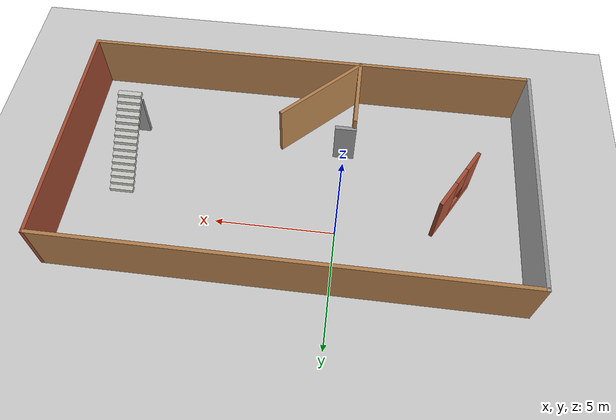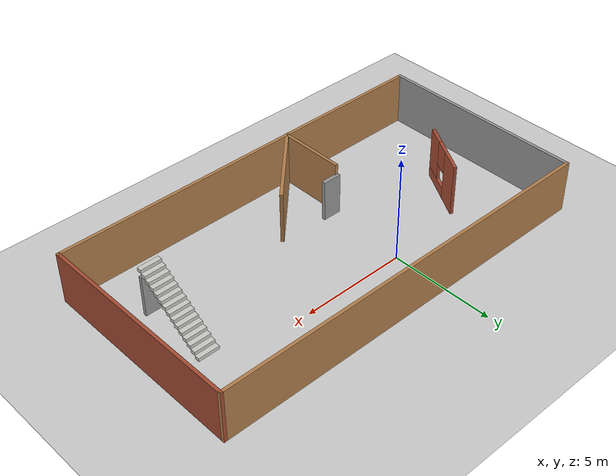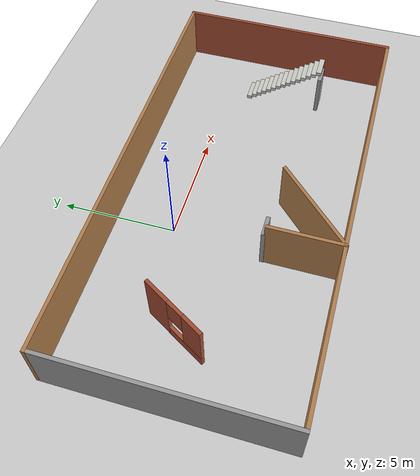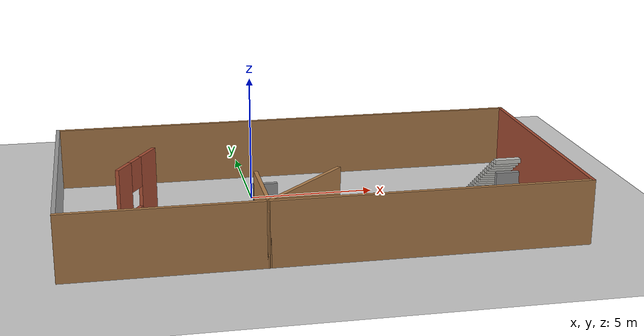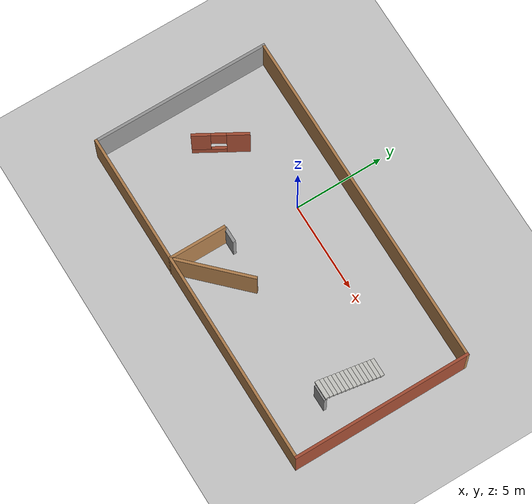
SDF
<sdf version="1.7">
 <world name="default">
  <light name="sun" type="directional">
   <pose>0 0 10 0 -0 0</pose>
   <diffuse>0.8 0.8 0.8 1</diffuse>
   <specular>0.2 0.2 0.2 1</specular>
   <attenuation>
    <range>1000</range>
    <constant>0.9</constant>
    <linear>0.01</linear>
    <quadratic>0.001</quadratic>
   </attenuation>
   <direction>-0.5 0.1 -0.9</direction>
   <spot><inner_angle>0</inner_angle><outer_angle>0</outer_angle><falloff>0</falloff></spot>
  </light>
  <model name="ground_plane">
   <static>1</static>
   <link name="link">
    <collision name="collision">
     <geometry><plane><normal>0 0 1</normal><size>100 100</size></plane></geometry>
     <surface><friction><ode><mu>100</mu><mu2>50</mu2></ode></friction></surface>
    </collision>
    <visual name="visual">
     <cast_shadows>0</cast_shadows>
     <geometry><plane><normal>0 0 1</normal><size>100 100</size></plane></geometry>
     <material>
      <script><uri>file://media/materials/scripts/gazebo.material</uri><name>Gazebo/Grey</name></script>
     </material>
    </visual>
   </link>
  </model>
  <gravity>0 0 -9.8</gravity>
  <magnetic_field>6e-06 2.3e-05 -4.2e-05</magnetic_field>
  <atmosphere type="adiabatic"/>
  <physics type="ode">
   <max_step_size>0.001</max_step_size>
   <real_time_factor>1</real_time_factor>
   <real_time_update_rate>1000</real_time_update_rate>
  </physics>
  <scene><ambient>0.4 0.4 0.4 1</ambient><background>0.7 0.7 0.7 1</background><shadows>1</shadows></scene>
  <audio><device>default</device></audio>
  <spherical_coordinates>
   <surface_model>EARTH_WGS84</surface_model>
   <latitude_deg>0</latitude_deg>
   <longitude_deg>0</longitude_deg>
   <elevation>0</elevation>
   <heading_deg>0</heading_deg>
  </spherical_coordinates>
  <model name="dummy_world">
   <pose>1.93186 -2.27963 0 0 -0 0</pose>
   <link name="Door_0">
    <collision name="Door_0_Collision">
     <geometry><box><size>0.9 0.17 2</size></box></geometry>
     <pose>0 0 1 0 -0 0</pose>
    </collision>
    <visual name="Door_0_Visual">
     <pose>0 0 1 0 -0 0</pose>
     <geometry><box><size>0.9 0.17 2</size></box></geometry>
     <material>
      <script><uri>file://media/materials/scripts/gazebo.material</uri><name>Gazebo/Grey</name></script>
     </material>
    </visual>
    <pose>-1.94359 -1.69996 0 0 -0 0</pose>
   </link>
   <link name="Door_1">
    <collision name="Door_1_Collision">
     <geometry><box><size>0.9 0.17 2</size></box></geometry>
     <pose>0 0 1 0 -0 0</pose>
    </collision>
    <visual name="Door_1_Visual">
     <pose>0 0 1 0 -0 0</pose>
     <geometry><box><size>0.9 0.17 2</size></box></geometry>
     <material>
      <script><uri>file://media/materials/scripts/gazebo.material</uri><name>Gazebo/Grey</name></script>
     </material>
    </visual>
    <pose>7.32525 -2.12823 0 0 -0 0</pose>
   </link>
   <link name="Stairs_0">
    <visual name="Stairs_0_Visual_0">
     <pose>7.32525 1.21816 0.083333 0 -0 0</pose>
     <geometry><box><size>1 0.233333 0.166667</size></box></geometry>
     <material>
      <script><uri>file://media/materials/scripts/gazebo.material</uri><name>Gazebo/CeilingTiled</name></script>
      <ambient>1 0.764706 0.305882 1</ambient>
     </material>
     <meta><layer>0</layer></meta>
    </visual>
    <collision name="Stairs_0_Collision_0">
     <geometry><box><size>1 0.233333 0.166667</size></box></geometry>
     <pose>7.32525 1.21816 0.083333 0 -0 0</pose>
    </collision>
    <visual name="Stairs_0_Visual_1">
     <pose>7.32525 0.984827 0.25 0 -0 0</pose>
     <geometry><box><size>1 0.233333 0.166667</size></box></geometry>
     <material>
      <script><uri>file://media/materials/scripts/gazebo.material</uri><name>Gazebo/CeilingTiled</name></script>
      <ambient>1 0.764706 0.305882 1</ambient>
     </material>
     <meta><layer>0</layer></meta>
    </visual>
    <collision name="Stairs_0_Collision_1">
     <geometry><box><size>1 0.233333 0.166667</size></box></geometry>
     <pose>7.32525 0.984827 0.25 0 -0 0</pose>
    </collision>
    <visual name="Stairs_0_Visual_2">
     <pose>7.32525 0.751494 0.416667 0 -0 0</pose>
     <geometry><box><size>1 0.233333 0.166667</size></box></geometry>
     <material>
      <script><uri>file://media/materials/scripts/gazebo.material</uri><name>Gazebo/CeilingTiled</name></script>
      <ambient>1 0.764706 0.305882 1</ambient>
     </material>
     <meta><layer>0</layer></meta>
    </visual>
    <collision name="Stairs_0_Collision_2">
     <geometry><box><size>1 0.233333 0.166667</size></box></geometry>
     <pose>7.32525 0.751494 0.416667 0 -0 0</pose>
    </collision>
    <visual name="Stairs_0_Visual_3">
     <pose>7.32525 0.518161 0.583333 0 -0 0</pose>
     <geometry><box><size>1 0.233333 0.166667</size></box></geometry>
     <material>
      <script><uri>file://media/materials/scripts/gazebo.material</uri><name>Gazebo/CeilingTiled</name></script>
      <ambient>1 0.764706 0.305882 1</ambient>
     </material>
     <meta><layer>0</layer></meta>
    </visual>
    <collision name="Stairs_0_Collision_3">
     <geometry><box><size>1 0.233333 0.166667</size></box></geometry>
     <pose>7.32525 0.518161 0.583333 0 -0 0</pose>
    </collision>
    <visual name="Stairs_0_Visual_4">
     <pose>7.32525 0.284827 0.75 0 -0 0</pose>
     <geometry><box><size>1 0.233333 0.166667</size></box></geometry>
     <material>
      <script><uri>file://media/materials/scripts/gazebo.material</uri><name>Gazebo/CeilingTiled</name></script>
      <ambient>1 0.764706 0.305882 1</ambient>
     </material>
     <meta><layer>0</layer></meta>
    </visual>
    <collision name="Stairs_0_Collision_4">
     <geometry><box><size>1 0.233333 0.166667</size></box></geometry>
     <pose>7.32525 0.284827 0.75 0 -0 0</pose>
    </collision>
    <visual name="Stairs_0_Visual_5">
     <pose>7.32525 0.051494 0.916667 0 -0 0</pose>
     <geometry><box><size>1 0.233333 0.166667</size></box></geometry>
     <material>
      <script><uri>file://media/materials/scripts/gazebo.material</uri><name>Gazebo/CeilingTiled</name></script>
      <ambient>1 0.764706 0.305882 1</ambient>
     </material>
     <meta><layer>0</layer></meta>
    </visual>
    <collision name="Stairs_0_Collision_5">
     <geometry><box><size>1 0.233333 0.166667</size></box></geometry>
     <pose>7.32525 0.051494 0.916667 0 -0 0</pose>
    </collision>
    <visual name="Stairs_0_Visual_6">
     <pose>7.32525 -0.181839 1.08333 0 -0 0</pose>
     <geometry><box><size>1 0.233333 0.166667</size></box></geometry>
     <material>
      <script><uri>file://media/materials/scripts/gazebo.material</uri><name>Gazebo/CeilingTiled</name></script>
      <ambient>1 0.764706 0.305882 1</ambient>
     </material>
     <meta><layer>0</layer></meta>
    </visual>
    <collision name="Stairs_0_Collision_6">
     <geometry><box><size>1 0.233333 0.166667</size></box></geometry>
     <pose>7.32525 -0.181839 1.08333 0 -0 0</pose>
    </collision>
    <visual name="Stairs_0_Visual_7">
     <pose>7.32525 -0.415173 1.25 0 -0 0</pose>
     <geometry><box><size>1 0.233333 0.166667</size></box></geometry>
     <material>
      <script><uri>file://media/materials/scripts/gazebo.material</uri><name>Gazebo/CeilingTiled</name></script>
      <ambient>1 0.764706 0.305882 1</ambient>
     </material>
     <meta><layer>0</layer></meta>
    </visual>
    <collision name="Stairs_0_Collision_7">
     <geometry><box><size>1 0.233333 0.166667</size></box></geometry>
     <pose>7.32525 -0.415173 1.25 0 -0 0</pose>
    </collision>
    <visual name="Stairs_0_Visual_8">
     <pose>7.32525 -0.648506 1.41667 0 -0 0</pose>
     <geometry><box><size>1 0.233333 0.166667</size></box></geometry>
     <material>
      <script><uri>file://media/materials/scripts/gazebo.material</uri><name>Gazebo/CeilingTiled</name></script>
      <ambient>1 0.764706 0.305882 1</ambient>
     </material>
     <meta><layer>0</layer></meta>
    </visual>
    <collision name="Stairs_0_Collision_8">
     <geometry><box><size>1 0.233333 0.166667</size></box></geometry>
     <pose>7.32525 -0.648506 1.41667 0 -0 0</pose>
    </collision>
    <visual name="Stairs_0_Visual_9">
     <pose>7.32525 -0.88184 1.58333 0 -0 0</pose>
     <geometry><box><size>1 0.233333 0.166667</size></box></geometry>
     <material>
      <script><uri>file://media/materials/scripts/gazebo.material</uri><name>Gazebo/CeilingTiled</name></script>
      <ambient>1 0.764706 0.305882 1</ambient>
     </material>
     <meta><layer>0</layer></meta>
    </visual>
    <collision name="Stairs_0_Collision_9">
     <geometry><box><size>1 0.233333 0.166667</size></box></geometry>
     <pose>7.32525 -0.88184 1.58333 0 -0 0</pose>
    </collision>
    <visual name="Stairs_0_Visual_10">
     <pose>7.32525 -1.11517 1.75 0 -0 0</pose>
     <geometry><box><size>1 0.233333 0.166667</size></box></geometry>
     <material>
      <script><uri>file://media/materials/scripts/gazebo.material</uri><name>Gazebo/CeilingTiled</name></script>
      <ambient>1 0.764706 0.305882 1</ambient>
     </material>
     <meta><layer>0</layer></meta>
    </visual>
    <collision name="Stairs_0_Collision_10">
     <geometry><box><size>1 0.233333 0.166667</size></box></geometry>
     <pose>7.32525 -1.11517 1.75 0 -0 0</pose>
    </collision>
    <visual name="Stairs_0_Visual_11">
     <pose>7.32525 -1.34851 1.91667 0 -0 0</pose>
     <geometry><box><size>1 0.233333 0.166667</size></box></geometry>
     <material>
      <script><uri>file://media/materials/scripts/gazebo.material</uri><name>Gazebo/CeilingTiled</name></script>
      <ambient>1 0.764706 0.305882 1</ambient>
     </material>
     <meta><layer>0</layer></meta>
    </visual>
    <collision name="Stairs_0_Collision_11">
     <geometry><box><size>1 0.233333 0.166667</size></box></geometry>
     <pose>7.32525 -1.34851 1.91667 0 -0 0</pose>
    </collision>
    <visual name="Stairs_0_Visual_12">
     <pose>7.32525 -1.58184 2.08333 0 -0 0</pose>
     <geometry><box><size>1 0.233333 0.166667</size></box></geometry>
     <material>
      <script><uri>file://media/materials/scripts/gazebo.material</uri><name>Gazebo/CeilingTiled</name></script>
      <ambient>1 0.764706 0.305882 1</ambient>
     </material>
     <meta><layer>0</layer></meta>
    </visual>
    <collision name="Stairs_0_Collision_12">
     <geometry><box><size>1 0.233333 0.166667</size></box></geometry>
     <pose>7.32525 -1.58184 2.08333 0 -0 0</pose>
    </collision>
    <visual name="Stairs_0_Visual_13">
     <pose>7.32525 -1.81517 2.25 0 -0 0</pose>
     <geometry><box><size>1 0.233333 0.166667</size></box></geometry>
     <material>
      <script><uri>file://media/materials/scripts/gazebo.material</uri><name>Gazebo/CeilingTiled</name></script>
      <ambient>1 0.764706 0.305882 1</ambient>
     </material>
     <meta><layer>0</layer></meta>
    </visual>
    <collision name="Stairs_0_Collision_13">
     <geometry><box><size>1 0.233333 0.166667</size></box></geometry>
     <pose>7.32525 -1.81517 2.25 0 -0 0</pose>
    </collision>
    <visual name="Stairs_0_Visual_14">
     <pose>7.32525 -2.04851 2.41667 0 -0 0</pose>
     <geometry><box><size>1 0.233333 0.166667</size></box></geometry>
     <material>
      <script><uri>file://media/materials/scripts/gazebo.material</uri><name>Gazebo/CeilingTiled</name></script>
      <ambient>1 0.764706 0.305882 1</ambient>
     </material>
     <meta><layer>0</layer></meta>
    </visual>
    <collision name="Stairs_0_Collision_14">
     <geometry><box><size>1 0.233333 0.166667</size></box></geometry>
     <pose>7.32525 -2.04851 2.41667 0 -0 0</pose>
    </collision>
   </link>
   <link name="Wall_14">
    <collision name="Wall_14_Collision">
     <geometry><box><size>3.25 0.15 2.5</size></box></geometry>
     <pose>0 0 1.25 0 -0 0</pose>
    </collision>
    <visual name="Wall_14_Visual">
     <pose>0 0 1.25 0 -0 0</pose>
     <geometry><box><size>3.25 0.15 2.5</size></box></geometry>
     <material>
      <script><uri>file://media/materials/scripts/gazebo.material</uri><name>Gazebo/Wood</name></script>
      <ambient>1 1 1 1</ambient>
     </material>
     <meta><layer>0</layer></meta>
    </visual>
    <pose>-2.3 -3.35947 0 0 -0 -1.5708</pose>
   </link>
   <link name="Wall_15">
    <collision name="Wall_15_Collision">
     <geometry><box><size>12 0.15 2.5</size></box></geometry>
     <pose>0 0 1.25 0 -0 0</pose>
    </collision>
    <visual name="Wall_15_Visual">
     <pose>0 0 1.25 0 -0 0</pose>
     <geometry><box><size>12 0.15 2.5</size></box></geometry>
     <material>
      <script><uri>file://media/materials/scripts/gazebo.material</uri><name>Gazebo/Wood</name></script>
      <ambient>1 1 1 1</ambient>
     </material>
     <meta><layer>0</layer></meta>
    </visual>
    <pose>3.625 -4.90947 0 0 -0 0</pose>
   </link>
   <link name="Wall_16">
    <collision name="Wall_16_Collision">
     <geometry><box><size>10 0.15 2.5</size></box></geometry>
     <pose>0 0 1.25 0 -0 0</pose>
    </collision>
    <visual name="Wall_16_Visual">
     <pose>0 0 1.25 0 -0 0</pose>
     <geometry><box><size>10 0.15 2.5</size></box></geometry>
     <material>
      <script><uri>file://media/materials/scripts/gazebo.material</uri><name>Gazebo/Bricks</name></script>
      <ambient>1 1 1 1</ambient>
     </material>
     <meta><layer>0</layer></meta>
    </visual>
    <pose>9.55 0.015533 0 0 -0 1.5708</pose>
   </link>
   <link name="Wall_17">
    <collision name="Wall_17_Collision">
     <geometry><box><size>19.25 0.15 2.5</size></box></geometry>
     <pose>0 0 1.25 0 -0 0</pose>
    </collision>
    <visual name="Wall_17_Visual">
     <pose>0 0 1.25 0 -0 0</pose>
     <geometry><box><size>19.25 0.15 2.5</size></box></geometry>
     <material>
      <script><uri>file://media/materials/scripts/gazebo.material</uri><name>Gazebo/Wood</name></script>
      <ambient>1 1 1 1</ambient>
     </material>
     <meta><layer>0</layer></meta>
    </visual>
    <pose>0 4.94053 0 0 -0 3.14159</pose>
   </link>
   <link name="Wall_18">
    <collision name="Wall_18_Collision">
     <geometry><box><size>10 0.15 2.5</size></box></geometry>
     <pose>0 0 1.25 0 -0 0</pose>
    </collision>
    <visual name="Wall_18_Visual">
     <pose>0 0 1.25 0 -0 0</pose>
     <geometry><box><size>10 0.15 2.5</size></box></geometry>
     <material>
      <script><uri>file://media/materials/scripts/gazebo.material</uri><name>Gazebo/Grey</name></script>
      <ambient>1 1 1 1</ambient>
     </material>
     <meta><layer>0</layer></meta>
    </visual>
    <pose>-9.55 0.015533 0 0 -0 -1.5708</pose>
   </link>
   <link name="Wall_19">
    <collision name="Wall_19_Collision">
     <geometry><box><size>7.4 0.15 2.5</size></box></geometry>
     <pose>0 0 1.25 0 -0 0</pose>
    </collision>
    <visual name="Wall_19_Visual">
     <pose>0 0 1.25 0 -0 0</pose>
     <geometry><box><size>7.4 0.15 2.5</size></box></geometry>
     <material>
      <script><uri>file://media/materials/scripts/gazebo.material</uri><name>Gazebo/Wood</name></script>
      <ambient>1 1 1 1</ambient>
     </material>
     <meta><layer>0</layer></meta>
    </visual>
    <pose>-5.925 -4.90947 0 0 -0 0</pose>
   </link>
   <link name="Wall_20">
    <collision name="Wall_20_Collision">
     <geometry><box><size>4.5 0.15 2.5</size></box></geometry>
     <pose>0 0 1.25 0 -0 0</pose>
    </collision>
    <visual name="Wall_20_Visual">
     <pose>0 0 1.25 0 -0 0</pose>
     <geometry><box><size>4.5 0.15 2.5</size></box></geometry>
     <material>
      <script><uri>file://media/materials/scripts/gazebo.material</uri><name>Gazebo/Wood</name></script>
      <ambient>1 1 1 1</ambient>
     </material>
     <meta><layer>0</layer></meta>
    </visual>
    <pose>-0.762043 -3.37151 0 0 -0 0.785398</pose>
   </link>
   <static>1</static>
  </model>
  <model name="dummy">
   <pose>-2.72873 -1.51531 0 0 -0 0</pose>
   <link name="Wall_0">
    <pose>-1.91377 -0.178774 0 0 -0 -2.0944</pose>
    <visual name="Wall_0_Visual_0">
     <pose>-0.897083 0 1.25 0 -0 0</pose>
     <geometry><box><size>1.20583 0.15 2.5</size></box></geometry>
     <material>
      <script><uri>file://media/materials/scripts/gazebo.material</uri><name>Gazebo/Bricks</name></script>
      <ambient>1 1 1 1</ambient>
     </material>
     <meta><layer>0</layer></meta>
    </visual>
    <collision name="Wall_0_Collision_0">
     <geometry><box><size>1.20583 0.15 2.5</size></box></geometry>
     <pose>-0.897083 0 1.25 0 -0 0</pose>
    </collision>
    <visual name="Wall_0_Visual_1">
     <pose>0.602917 0 0.25 0 -0 0</pose>
     <geometry><box><size>1.79417 0.15 0.5</size></box></geometry>
     <material>
      <script><uri>file://media/materials/scripts/gazebo.material</uri><name>Gazebo/Bricks</name></script>
      <ambient>1 1 1 1</ambient>
     </material>
     <meta><layer>0</layer></meta>
    </visual>
    <collision name="Wall_0_Collision_1">
     <geometry><box><size>1.79417 0.15 0.5</size></box></geometry>
     <pose>0.602917 0 0.25 0 -0 0</pose>
    </collision>
    <visual name="Wall_0_Visual_2">
     <pose>1.00292 0 1.5 0 -0 0</pose>
     <geometry><box><size>0.994167 0.15 2</size></box></geometry>
     <material>
      <script><uri>file://media/materials/scripts/gazebo.material</uri><name>Gazebo/Bricks</name></script>
      <ambient>1 1 1 1</ambient>
     </material>
     <meta><layer>0</layer></meta>
    </visual>
    <collision name="Wall_0_Collision_2">
     <geometry><box><size>0.994167 0.15 2</size></box></geometry>
     <pose>1.00292 0 1.5 0 -0 0</pose>
    </collision>
    <visual name="Wall_0_Visual_3">
     <pose>0.105833 0 1.9 0 -0 0</pose>
     <geometry><box><size>0.8 0.15 1.2</size></box></geometry>
     <material>
      <script><uri>file://media/materials/scripts/gazebo.material</uri><name>Gazebo/Bricks</name></script>
      <ambient>1 1 1 1</ambient>
     </material>
     <meta><layer>0</layer></meta>
    </visual>
    <collision name="Wall_0_Collision_3">
     <geometry><box><size>0.8 0.15 1.2</size></box></geometry>
     <pose>0.105833 0 1.9 0 -0 0</pose>
    </collision>
   </link>
   <static>1</static>
  </model>
 </world>
</sdf>
